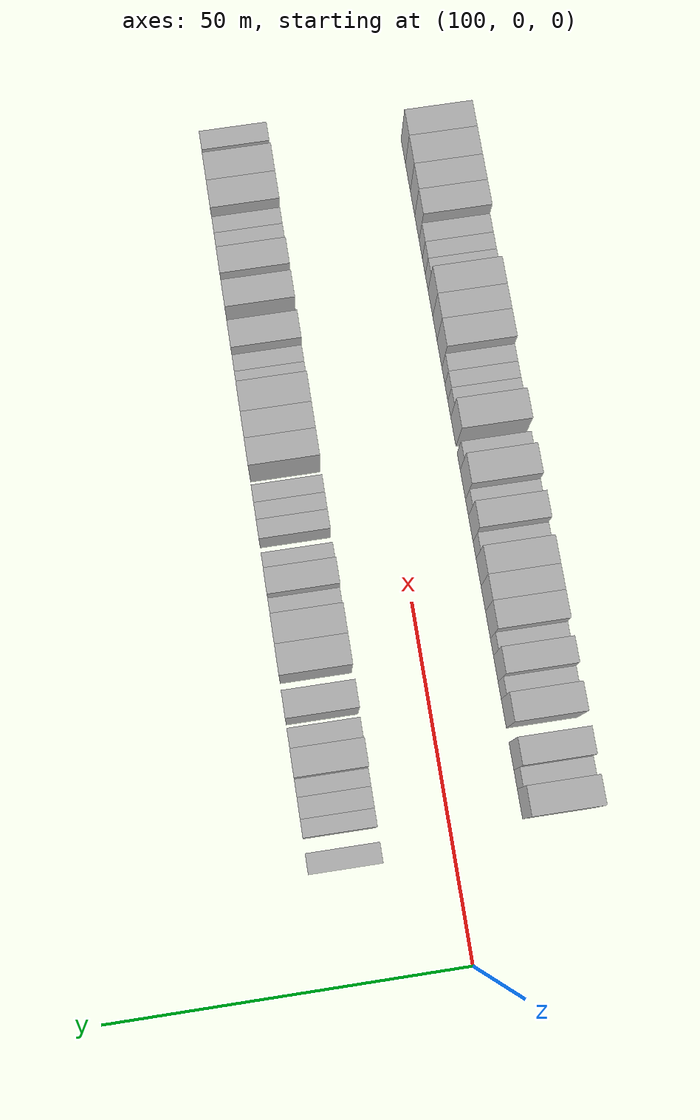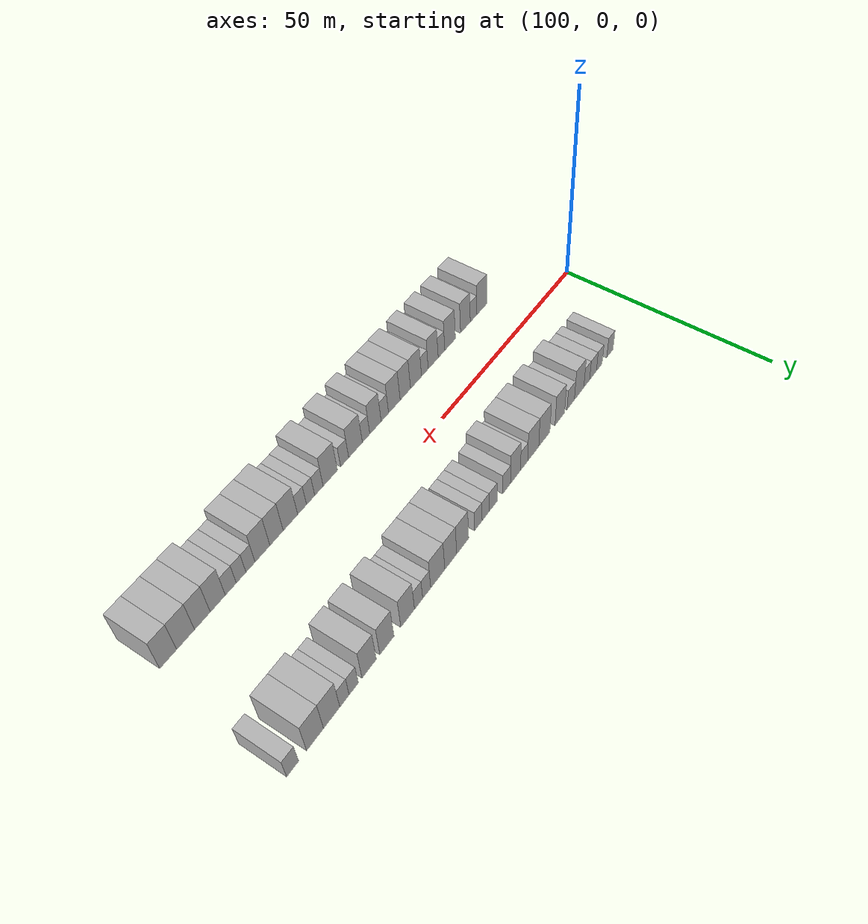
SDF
<sdf version="1.6">
 <world name="default">
  <model name="building_29">
   <static>1</static>
   <pose>116.5172 15.0000 0 0.000000 0.000000 1.570796</pose>
   <link name="link">
    <pose>0 0 3.00 0 0 0</pose>
    <collision name="collision"><geometry><box><size>10.0000 2.7716 6.0000</size></box></geometry></collision>
    <visual name="visual">
     <cast_shadows>0</cast_shadows>
     <geometry><box><size>10.0000 2.7716 6.0000</size></box></geometry>
     <material>
      <script>
       <uri>model://HANNAS_wall/materials/scripts</uri>
       <uri>model://HANNAS_wall/materials/textures</uri>
       <name>vrc/HANNAS_wall</name>
      </script>
     </material>
    </visual>
   </link>
  </model>
  <model name="building_30">
   <static>1</static>
   <pose>121.1402 15.0000 0 0.000000 0.000000 1.570796</pose>
   <link name="link">
    <pose>0 0 3.00 0 0 0</pose>
    <collision name="collision"><geometry><box><size>10.0000 2.4743 6.0000</size></box></geometry></collision>
    <visual name="visual">
     <cast_shadows>0</cast_shadows>
     <geometry><box><size>10.0000 2.4743 6.0000</size></box></geometry>
     <material>
      <script>
       <uri>model://HANNAS_wall/materials/scripts</uri>
       <uri>model://HANNAS_wall/materials/textures</uri>
       <name>vrc/HANNAS_wall</name>
      </script>
     </material>
    </visual>
   </link>
  </model>
  <model name="building_31">
   <static>1</static>
   <pose>123.8260 15.0000 0 0.000000 0.000000 1.570796</pose>
   <link name="link">
    <pose>0 0 3.00 0 0 0</pose>
    <collision name="collision"><geometry><box><size>10.0000 2.8974 6.0000</size></box></geometry></collision>
    <visual name="visual">
     <cast_shadows>0</cast_shadows>
     <geometry><box><size>10.0000 2.8974 6.0000</size></box></geometry>
     <material>
      <script>
       <uri>model://HANNAS_wall/materials/scripts</uri>
       <uri>model://HANNAS_wall/materials/textures</uri>
       <name>vrc/HANNAS_wall</name>
      </script>
     </material>
    </visual>
   </link>
  </model>
  <model name="building_32">
   <static>1</static>
   <pose>126.4903 15.0000 0 0.000000 0.000000 1.570796</pose>
   <link name="link">
    <pose>0 0 3.00 0 0 0</pose>
    <collision name="collision"><geometry><box><size>10.0000 2.4313 6.0000</size></box></geometry></collision>
    <visual name="visual">
     <cast_shadows>0</cast_shadows>
     <geometry><box><size>10.0000 2.4313 6.0000</size></box></geometry>
     <material>
      <script>
       <uri>model://HANNAS_wall/materials/scripts</uri>
       <uri>model://HANNAS_wall/materials/textures</uri>
       <name>vrc/HANNAS_wall</name>
      </script>
     </material>
    </visual>
   </link>
  </model>
  <model name="building_33">
   <static>1</static>
   <pose>129.6501 15.0000 0 0.000000 0.000000 1.570796</pose>
   <link name="link">
    <pose>0 0 4.50 0 0 0</pose>
    <collision name="collision"><geometry><box><size>10.0000 3.8882 9.0000</size></box></geometry></collision>
    <visual name="visual">
     <cast_shadows>0</cast_shadows>
     <geometry><box><size>10.0000 3.8882 9.0000</size></box></geometry>
     <material>
      <script>
       <uri>model://HANNAS_wall/materials/scripts</uri>
       <uri>model://HANNAS_wall/materials/textures</uri>
       <name>vrc/HANNAS_wall</name>
      </script>
     </material>
    </visual>
   </link>
  </model>
  <model name="building_34">
   <static>1</static>
   <pose>133.0760 15.0000 0 0.000000 0.000000 1.570796</pose>
   <link name="link">
    <pose>0 0 3.00 0 0 0</pose>
    <collision name="collision"><geometry><box><size>10.0000 2.9636 6.0000</size></box></geometry></collision>
    <visual name="visual">
     <cast_shadows>0</cast_shadows>
     <geometry><box><size>10.0000 2.9636 6.0000</size></box></geometry>
     <material>
      <script>
       <uri>model://HANNAS_wall/materials/scripts</uri>
       <uri>model://HANNAS_wall/materials/textures</uri>
       <name>vrc/HANNAS_wall</name>
      </script>
     </material>
    </visual>
   </link>
  </model>
  <model name="building_35">
   <static>1</static>
   <pose>137.4573 15.0000 0 0.000000 0.000000 1.570796</pose>
   <link name="link">
    <pose>0 0 4.50 0 0 0</pose>
    <collision name="collision"><geometry><box><size>10.0000 3.7990 9.0000</size></box></geometry></collision>
    <visual name="visual">
     <cast_shadows>0</cast_shadows>
     <geometry><box><size>10.0000 3.7990 9.0000</size></box></geometry>
     <material>
      <script>
       <uri>model://HANNAS_wall/materials/scripts</uri>
       <uri>model://HANNAS_wall/materials/textures</uri>
       <name>vrc/HANNAS_wall</name>
      </script>
     </material>
    </visual>
   </link>
  </model>
  <model name="building_36">
   <static>1</static>
   <pose>143.5039 15.0000 0 0.000000 0.000000 1.570796</pose>
   <link name="link">
    <pose>0 0 4.50 0 0 0</pose>
    <collision name="collision"><geometry><box><size>10.0000 4.2943 9.0000</size></box></geometry></collision>
    <visual name="visual">
     <cast_shadows>0</cast_shadows>
     <geometry><box><size>10.0000 4.2943 9.0000</size></box></geometry>
     <material>
      <script>
       <uri>model://HANNAS_wall/materials/scripts</uri>
       <uri>model://HANNAS_wall/materials/textures</uri>
       <name>vrc/HANNAS_wall</name>
      </script>
     </material>
    </visual>
   </link>
  </model>
  <model name="building_37">
   <static>1</static>
   <pose>147.7467 15.0000 0 0.000000 0.000000 1.570796</pose>
   <link name="link">
    <pose>0 0 4.50 0 0 0</pose>
    <collision name="collision"><geometry><box><size>10.0000 4.1912 9.0000</size></box></geometry></collision>
    <visual name="visual">
     <cast_shadows>0</cast_shadows>
     <geometry><box><size>10.0000 4.1912 9.0000</size></box></geometry>
     <material>
      <script>
       <uri>model://HANNAS_wall/materials/scripts</uri>
       <uri>model://HANNAS_wall/materials/textures</uri>
       <name>vrc/HANNAS_wall</name>
      </script>
     </material>
    </visual>
   </link>
  </model>
  <model name="building_38">
   <static>1</static>
   <pose>151.1695 15.0000 0 0.000000 0.000000 1.570796</pose>
   <link name="link">
    <pose>0 0 3.00 0 0 0</pose>
    <collision name="collision"><geometry><box><size>10.0000 2.6546 6.0000</size></box></geometry></collision>
    <visual name="visual">
     <cast_shadows>0</cast_shadows>
     <geometry><box><size>10.0000 2.6546 6.0000</size></box></geometry>
     <material>
      <script>
       <uri>model://HANNAS_wall/materials/scripts</uri>
       <uri>model://HANNAS_wall/materials/textures</uri>
       <name>vrc/HANNAS_wall</name>
      </script>
     </material>
    </visual>
   </link>
  </model>
  <model name="building_39">
   <static>1</static>
   <pose>154.3343 15.0000 0 0.000000 0.000000 1.570796</pose>
   <link name="link">
    <pose>0 0 4.50 0 0 0</pose>
    <collision name="collision"><geometry><box><size>10.0000 3.6749 9.0000</size></box></geometry></collision>
    <visual name="visual">
     <cast_shadows>0</cast_shadows>
     <geometry><box><size>10.0000 3.6749 9.0000</size></box></geometry>
     <material>
      <script>
       <uri>model://HANNAS_wall/materials/scripts</uri>
       <uri>model://HANNAS_wall/materials/textures</uri>
       <name>vrc/HANNAS_wall</name>
      </script>
     </material>
    </visual>
   </link>
  </model>
  <model name="building_40">
   <static>1</static>
   <pose>157.5388 15.0000 0 0.000000 0.000000 1.570796</pose>
   <link name="link">
    <pose>0 0 3.00 0 0 0</pose>
    <collision name="collision"><geometry><box><size>10.0000 2.7341 6.0000</size></box></geometry></collision>
    <visual name="visual">
     <cast_shadows>0</cast_shadows>
     <geometry><box><size>10.0000 2.7341 6.0000</size></box></geometry>
     <material>
      <script>
       <uri>model://HANNAS_wall/materials/scripts</uri>
       <uri>model://HANNAS_wall/materials/textures</uri>
       <name>vrc/HANNAS_wall</name>
      </script>
     </material>
    </visual>
   </link>
  </model>
  <model name="building_41">
   <static>1</static>
   <pose>162.2911 15.0000 0 0.000000 0.000000 1.570796</pose>
   <link name="link">
    <pose>0 0 3.00 0 0 0</pose>
    <collision name="collision"><geometry><box><size>10.0000 2.7706 6.0000</size></box></geometry></collision>
    <visual name="visual">
     <cast_shadows>0</cast_shadows>
     <geometry><box><size>10.0000 2.7706 6.0000</size></box></geometry>
     <material>
      <script>
       <uri>model://HANNAS_wall/materials/scripts</uri>
       <uri>model://HANNAS_wall/materials/textures</uri>
       <name>vrc/HANNAS_wall</name>
      </script>
     </material>
    </visual>
   </link>
  </model>
  <model name="building_42">
   <static>1</static>
   <pose>164.9075 15.0000 0 0.000000 0.000000 1.570796</pose>
   <link name="link">
    <pose>0 0 3.00 0 0 0</pose>
    <collision name="collision"><geometry><box><size>10.0000 2.4622 6.0000</size></box></geometry></collision>
    <visual name="visual">
     <cast_shadows>0</cast_shadows>
     <geometry><box><size>10.0000 2.4622 6.0000</size></box></geometry>
     <material>
      <script>
       <uri>model://HANNAS_wall/materials/scripts</uri>
       <uri>model://HANNAS_wall/materials/textures</uri>
       <name>vrc/HANNAS_wall</name>
      </script>
     </material>
    </visual>
   </link>
  </model>
  <model name="building_43">
   <static>1</static>
   <pose>167.4110 15.0000 0 0.000000 0.000000 1.570796</pose>
   <link name="link">
    <pose>0 0 3.00 0 0 0</pose>
    <collision name="collision"><geometry><box><size>10.0000 2.5448 6.0000</size></box></geometry></collision>
    <visual name="visual">
     <cast_shadows>0</cast_shadows>
     <geometry><box><size>10.0000 2.5448 6.0000</size></box></geometry>
     <material>
      <script>
       <uri>model://HANNAS_wall/materials/scripts</uri>
       <uri>model://HANNAS_wall/materials/textures</uri>
       <name>vrc/HANNAS_wall</name>
      </script>
     </material>
    </visual>
   </link>
  </model>
  <model name="building_44">
   <static>1</static>
   <pose>172.6693 15.0000 0 0.000000 0.000000 1.570796</pose>
   <link name="link">
    <pose>0 0 4.50 0 0 0</pose>
    <collision name="collision"><geometry><box><size>10.0000 3.9719 9.0000</size></box></geometry></collision>
    <visual name="visual">
     <cast_shadows>0</cast_shadows>
     <geometry><box><size>10.0000 3.9719 9.0000</size></box></geometry>
     <material>
      <script>
       <uri>model://HANNAS_wall/materials/scripts</uri>
       <uri>model://HANNAS_wall/materials/textures</uri>
       <name>vrc/HANNAS_wall</name>
      </script>
     </material>
    </visual>
   </link>
  </model>
  <model name="building_45">
   <static>1</static>
   <pose>176.5831 15.0000 0 0.000000 0.000000 1.570796</pose>
   <link name="link">
    <pose>0 0 4.50 0 0 0</pose>
    <collision name="collision"><geometry><box><size>10.0000 3.8555 9.0000</size></box></geometry></collision>
    <visual name="visual">
     <cast_shadows>0</cast_shadows>
     <geometry><box><size>10.0000 3.8555 9.0000</size></box></geometry>
     <material>
      <script>
       <uri>model://HANNAS_wall/materials/scripts</uri>
       <uri>model://HANNAS_wall/materials/textures</uri>
       <name>vrc/HANNAS_wall</name>
      </script>
     </material>
    </visual>
   </link>
  </model>
  <model name="building_46">
   <static>1</static>
   <pose>180.7405 15.0000 0 0.000000 0.000000 1.570796</pose>
   <link name="link">
    <pose>0 0 4.50 0 0 0</pose>
    <collision name="collision"><geometry><box><size>10.0000 4.4594 9.0000</size></box></geometry></collision>
    <visual name="visual">
     <cast_shadows>0</cast_shadows>
     <geometry><box><size>10.0000 4.4594 9.0000</size></box></geometry>
     <material>
      <script>
       <uri>model://HANNAS_wall/materials/scripts</uri>
       <uri>model://HANNAS_wall/materials/textures</uri>
       <name>vrc/HANNAS_wall</name>
      </script>
     </material>
    </visual>
   </link>
  </model>
  <model name="building_47">
   <static>1</static>
   <pose>184.2190 15.0000 0 0.000000 0.000000 1.570796</pose>
   <link name="link">
    <pose>0 0 3.00 0 0 0</pose>
    <collision name="collision"><geometry><box><size>10.0000 2.4976 6.0000</size></box></geometry></collision>
    <visual name="visual">
     <cast_shadows>0</cast_shadows>
     <geometry><box><size>10.0000 2.4976 6.0000</size></box></geometry>
     <material>
      <script>
       <uri>model://HANNAS_wall/materials/scripts</uri>
       <uri>model://HANNAS_wall/materials/textures</uri>
       <name>vrc/HANNAS_wall</name>
      </script>
     </material>
    </visual>
   </link>
  </model>
  <model name="building_48">
   <static>1</static>
   <pose>186.7154 15.0000 0 0.000000 0.000000 1.570796</pose>
   <link name="link">
    <pose>0 0 3.00 0 0 0</pose>
    <collision name="collision"><geometry><box><size>10.0000 2.4953 6.0000</size></box></geometry></collision>
    <visual name="visual">
     <cast_shadows>0</cast_shadows>
     <geometry><box><size>10.0000 2.4953 6.0000</size></box></geometry>
     <material>
      <script>
       <uri>model://HANNAS_wall/materials/scripts</uri>
       <uri>model://HANNAS_wall/materials/textures</uri>
       <name>vrc/HANNAS_wall</name>
      </script>
     </material>
    </visual>
   </link>
  </model>
  <model name="building_49">
   <static>1</static>
   <pose>190.0253 15.0000 0 0.000000 0.000000 1.570796</pose>
   <link name="link">
    <pose>0 0 4.50 0 0 0</pose>
    <collision name="collision"><geometry><box><size>10.0000 4.1245 9.0000</size></box></geometry></collision>
    <visual name="visual">
     <cast_shadows>0</cast_shadows>
     <geometry><box><size>10.0000 4.1245 9.0000</size></box></geometry>
     <material>
      <script>
       <uri>model://HANNAS_wall/materials/scripts</uri>
       <uri>model://HANNAS_wall/materials/textures</uri>
       <name>vrc/HANNAS_wall</name>
      </script>
     </material>
    </visual>
   </link>
  </model>
  <model name="building_50">
   <static>1</static>
   <pose>196.1464 15.0000 0 0.000000 0.000000 1.570796</pose>
   <link name="link">
    <pose>0 0 4.50 0 0 0</pose>
    <collision name="collision"><geometry><box><size>10.0000 4.1176 9.0000</size></box></geometry></collision>
    <visual name="visual">
     <cast_shadows>0</cast_shadows>
     <geometry><box><size>10.0000 4.1176 9.0000</size></box></geometry>
     <material>
      <script>
       <uri>model://HANNAS_wall/materials/scripts</uri>
       <uri>model://HANNAS_wall/materials/textures</uri>
       <name>vrc/HANNAS_wall</name>
      </script>
     </material>
    </visual>
   </link>
  </model>
  <model name="building_51">
   <static>1</static>
   <pose>201.2211 15.0000 0 0.000000 0.000000 1.570796</pose>
   <link name="link">
    <pose>0 0 4.50 0 0 0</pose>
    <collision name="collision"><geometry><box><size>10.0000 4.0319 9.0000</size></box></geometry></collision>
    <visual name="visual">
     <cast_shadows>0</cast_shadows>
     <geometry><box><size>10.0000 4.0319 9.0000</size></box></geometry>
     <material>
      <script>
       <uri>model://HANNAS_wall/materials/scripts</uri>
       <uri>model://HANNAS_wall/materials/textures</uri>
       <name>vrc/HANNAS_wall</name>
      </script>
     </material>
    </visual>
   </link>
  </model>
  <model name="building_52">
   <static>1</static>
   <pose>205.5053 15.0000 0 0.000000 0.000000 1.570796</pose>
   <link name="link">
    <pose>0 0 3.00 0 0 0</pose>
    <collision name="collision"><geometry><box><size>10.0000 2.5364 6.0000</size></box></geometry></collision>
    <visual name="visual">
     <cast_shadows>0</cast_shadows>
     <geometry><box><size>10.0000 2.5364 6.0000</size></box></geometry>
     <material>
      <script>
       <uri>model://HANNAS_wall/materials/scripts</uri>
       <uri>model://HANNAS_wall/materials/textures</uri>
       <name>vrc/HANNAS_wall</name>
      </script>
     </material>
    </visual>
   </link>
  </model>
  <model name="building_53">
   <static>1</static>
   <pose>208.0329 15.0000 0 0.000000 0.000000 1.570796</pose>
   <link name="link">
    <pose>0 0 3.00 0 0 0</pose>
    <collision name="collision"><geometry><box><size>10.0000 2.5187 6.0000</size></box></geometry></collision>
    <visual name="visual">
     <cast_shadows>0</cast_shadows>
     <geometry><box><size>10.0000 2.5187 6.0000</size></box></geometry>
     <material>
      <script>
       <uri>model://HANNAS_wall/materials/scripts</uri>
       <uri>model://HANNAS_wall/materials/textures</uri>
       <name>vrc/HANNAS_wall</name>
      </script>
     </material>
    </visual>
   </link>
  </model>
  <model name="building_54">
   <static>1</static>
   <pose>211.4570 15.0000 0 0.000000 0.000000 1.570796</pose>
   <link name="link">
    <pose>0 0 4.50 0 0 0</pose>
    <collision name="collision"><geometry><box><size>10.0000 4.3296 9.0000</size></box></geometry></collision>
    <visual name="visual">
     <cast_shadows>0</cast_shadows>
     <geometry><box><size>10.0000 4.3296 9.0000</size></box></geometry>
     <material>
      <script>
       <uri>model://HANNAS_wall/materials/scripts</uri>
       <uri>model://HANNAS_wall/materials/textures</uri>
       <name>vrc/HANNAS_wall</name>
      </script>
     </material>
    </visual>
   </link>
  </model>
  <model name="building_55">
   <static>1</static>
   <pose>215.8085 15.0000 0 0.000000 0.000000 1.570796</pose>
   <link name="link">
    <pose>0 0 4.50 0 0 0</pose>
    <collision name="collision"><geometry><box><size>10.0000 4.3734 9.0000</size></box></geometry></collision>
    <visual name="visual">
     <cast_shadows>0</cast_shadows>
     <geometry><box><size>10.0000 4.3734 9.0000</size></box></geometry>
     <material>
      <script>
       <uri>model://HANNAS_wall/materials/scripts</uri>
       <uri>model://HANNAS_wall/materials/textures</uri>
       <name>vrc/HANNAS_wall</name>
      </script>
     </material>
    </visual>
   </link>
  </model>
  <model name="building_56">
   <static>1</static>
   <pose>221.4932 15.0000 0 0.000000 0.000000 1.570796</pose>
   <link name="link">
    <pose>0 0 3.00 0 0 0</pose>
    <collision name="collision"><geometry><box><size>10.0000 2.9960 6.0000</size></box></geometry></collision>
    <visual name="visual">
     <cast_shadows>0</cast_shadows>
     <geometry><box><size>10.0000 2.9960 6.0000</size></box></geometry>
     <material>
      <script>
       <uri>model://HANNAS_wall/materials/scripts</uri>
       <uri>model://HANNAS_wall/materials/textures</uri>
       <name>vrc/HANNAS_wall</name>
      </script>
     </material>
    </visual>
   </link>
  </model>
  <model name="building_86">
   <static>1</static>
   <pose>120.1081 -15.0000 0 0.000000 0.000000 1.570796</pose>
   <link name="link">
    <pose>0 0 4.50 0 0 0</pose>
    <collision name="collision"><geometry><box><size>10.0000 4.0918 9.0000</size></box></geometry></collision>
    <visual name="visual">
     <cast_shadows>0</cast_shadows>
     <geometry><box><size>10.0000 4.0918 9.0000</size></box></geometry>
     <material>
      <script>
       <uri>model://HANNAS_wall/materials/scripts</uri>
       <uri>model://HANNAS_wall/materials/textures</uri>
       <name>vrc/HANNAS_wall</name>
      </script>
     </material>
    </visual>
   </link>
  </model>
  <model name="building_87">
   <static>1</static>
   <pose>123.4624 -15.0000 0 0.000000 0.000000 1.570796</pose>
   <link name="link">
    <pose>0 0 3.00 0 0 0</pose>
    <collision name="collision"><geometry><box><size>10.0000 2.6167 6.0000</size></box></geometry></collision>
    <visual name="visual">
     <cast_shadows>0</cast_shadows>
     <geometry><box><size>10.0000 2.6167 6.0000</size></box></geometry>
     <material>
      <script>
       <uri>model://HANNAS_wall/materials/scripts</uri>
       <uri>model://HANNAS_wall/materials/textures</uri>
       <name>vrc/HANNAS_wall</name>
      </script>
     </material>
    </visual>
   </link>
  </model>
  <model name="building_88">
   <static>1</static>
   <pose>126.6639 -15.0000 0 0.000000 0.000000 1.570796</pose>
   <link name="link">
    <pose>0 0 4.50 0 0 0</pose>
    <collision name="collision"><geometry><box><size>10.0000 3.7864 9.0000</size></box></geometry></collision>
    <visual name="visual">
     <cast_shadows>0</cast_shadows>
     <geometry><box><size>10.0000 3.7864 9.0000</size></box></geometry>
     <material>
      <script>
       <uri>model://HANNAS_wall/materials/scripts</uri>
       <uri>model://HANNAS_wall/materials/textures</uri>
       <name>vrc/HANNAS_wall</name>
      </script>
     </material>
    </visual>
   </link>
  </model>
  <model name="building_89">
   <static>1</static>
   <pose>132.5696 -15.0000 0 0.000000 0.000000 1.570796</pose>
   <link name="link">
    <pose>0 0 4.50 0 0 0</pose>
    <collision name="collision"><geometry><box><size>10.0000 4.0250 9.0000</size></box></geometry></collision>
    <visual name="visual">
     <cast_shadows>0</cast_shadows>
     <geometry><box><size>10.0000 4.0250 9.0000</size></box></geometry>
     <material>
      <script>
       <uri>model://HANNAS_wall/materials/scripts</uri>
       <uri>model://HANNAS_wall/materials/textures</uri>
       <name>vrc/HANNAS_wall</name>
      </script>
     </material>
    </visual>
   </link>
  </model>
  <model name="building_90">
   <static>1</static>
   <pose>135.8170 -15.0000 0 0.000000 0.000000 1.570796</pose>
   <link name="link">
    <pose>0 0 3.00 0 0 0</pose>
    <collision name="collision"><geometry><box><size>10.0000 2.4698 6.0000</size></box></geometry></collision>
    <visual name="visual">
     <cast_shadows>0</cast_shadows>
     <geometry><box><size>10.0000 2.4698 6.0000</size></box></geometry>
     <material>
      <script>
       <uri>model://HANNAS_wall/materials/scripts</uri>
       <uri>model://HANNAS_wall/materials/textures</uri>
       <name>vrc/HANNAS_wall</name>
      </script>
     </material>
    </visual>
   </link>
  </model>
  <model name="building_91">
   <static>1</static>
   <pose>138.8957 -15.0000 0 0.000000 0.000000 1.570796</pose>
   <link name="link">
    <pose>0 0 4.50 0 0 0</pose>
    <collision name="collision"><geometry><box><size>10.0000 3.6876 9.0000</size></box></geometry></collision>
    <visual name="visual">
     <cast_shadows>0</cast_shadows>
     <geometry><box><size>10.0000 3.6876 9.0000</size></box></geometry>
     <material>
      <script>
       <uri>model://HANNAS_wall/materials/scripts</uri>
       <uri>model://HANNAS_wall/materials/textures</uri>
       <name>vrc/HANNAS_wall</name>
      </script>
     </material>
    </visual>
   </link>
  </model>
  <model name="building_92">
   <static>1</static>
   <pose>141.9514 -15.0000 0 0.000000 0.000000 1.570796</pose>
   <link name="link">
    <pose>0 0 3.00 0 0 0</pose>
    <collision name="collision"><geometry><box><size>10.0000 2.4238 6.0000</size></box></geometry></collision>
    <visual name="visual">
     <cast_shadows>0</cast_shadows>
     <geometry><box><size>10.0000 2.4238 6.0000</size></box></geometry>
     <material>
      <script>
       <uri>model://HANNAS_wall/materials/scripts</uri>
       <uri>model://HANNAS_wall/materials/textures</uri>
       <name>vrc/HANNAS_wall</name>
      </script>
     </material>
    </visual>
   </link>
  </model>
  <model name="building_93">
   <static>1</static>
   <pose>145.1328 -15.0000 0 0.000000 0.000000 1.570796</pose>
   <link name="link">
    <pose>0 0 4.50 0 0 0</pose>
    <collision name="collision"><geometry><box><size>10.0000 3.9390 9.0000</size></box></geometry></collision>
    <visual name="visual">
     <cast_shadows>0</cast_shadows>
     <geometry><box><size>10.0000 3.9390 9.0000</size></box></geometry>
     <material>
      <script>
       <uri>model://HANNAS_wall/materials/scripts</uri>
       <uri>model://HANNAS_wall/materials/textures</uri>
       <name>vrc/HANNAS_wall</name>
      </script>
     </material>
    </visual>
   </link>
  </model>
  <model name="building_94">
   <static>1</static>
   <pose>148.9243 -15.0000 0 0.000000 0.000000 1.570796</pose>
   <link name="link">
    <pose>0 0 4.50 0 0 0</pose>
    <collision name="collision"><geometry><box><size>10.0000 3.6440 9.0000</size></box></geometry></collision>
    <visual name="visual">
     <cast_shadows>0</cast_shadows>
     <geometry><box><size>10.0000 3.6440 9.0000</size></box></geometry>
     <material>
      <script>
       <uri>model://HANNAS_wall/materials/scripts</uri>
       <uri>model://HANNAS_wall/materials/textures</uri>
       <name>vrc/HANNAS_wall</name>
      </script>
     </material>
    </visual>
   </link>
  </model>
  <model name="building_95">
   <static>1</static>
   <pose>152.7528 -15.0000 0 0.000000 0.000000 1.570796</pose>
   <link name="link">
    <pose>0 0 4.50 0 0 0</pose>
    <collision name="collision"><geometry><box><size>10.0000 4.0130 9.0000</size></box></geometry></collision>
    <visual name="visual">
     <cast_shadows>0</cast_shadows>
     <geometry><box><size>10.0000 4.0130 9.0000</size></box></geometry>
     <material>
      <script>
       <uri>model://HANNAS_wall/materials/scripts</uri>
       <uri>model://HANNAS_wall/materials/textures</uri>
       <name>vrc/HANNAS_wall</name>
      </script>
     </material>
    </visual>
   </link>
  </model>
  <model name="building_96">
   <static>1</static>
   <pose>156.0105 -15.0000 0 0.000000 0.000000 1.570796</pose>
   <link name="link">
    <pose>0 0 3.00 0 0 0</pose>
    <collision name="collision"><geometry><box><size>10.0000 2.5024 6.0000</size></box></geometry></collision>
    <visual name="visual">
     <cast_shadows>0</cast_shadows>
     <geometry><box><size>10.0000 2.5024 6.0000</size></box></geometry>
     <material>
      <script>
       <uri>model://HANNAS_wall/materials/scripts</uri>
       <uri>model://HANNAS_wall/materials/textures</uri>
       <name>vrc/HANNAS_wall</name>
      </script>
     </material>
    </visual>
   </link>
  </model>
  <model name="building_97">
   <static>1</static>
   <pose>159.1634 -15.0000 0 0.000000 0.000000 1.570796</pose>
   <link name="link">
    <pose>0 0 4.50 0 0 0</pose>
    <collision name="collision"><geometry><box><size>10.0000 3.8034 9.0000</size></box></geometry></collision>
    <visual name="visual">
     <cast_shadows>0</cast_shadows>
     <geometry><box><size>10.0000 3.8034 9.0000</size></box></geometry>
     <material>
      <script>
       <uri>model://HANNAS_wall/materials/scripts</uri>
       <uri>model://HANNAS_wall/materials/textures</uri>
       <name>vrc/HANNAS_wall</name>
      </script>
     </material>
    </visual>
   </link>
  </model>
  <model name="building_98">
   <static>1</static>
   <pose>162.2902 -15.0000 0 0.000000 0.000000 1.570796</pose>
   <link name="link">
    <pose>0 0 3.00 0 0 0</pose>
    <collision name="collision"><geometry><box><size>10.0000 2.4501 6.0000</size></box></geometry></collision>
    <visual name="visual">
     <cast_shadows>0</cast_shadows>
     <geometry><box><size>10.0000 2.4501 6.0000</size></box></geometry>
     <material>
      <script>
       <uri>model://HANNAS_wall/materials/scripts</uri>
       <uri>model://HANNAS_wall/materials/textures</uri>
       <name>vrc/HANNAS_wall</name>
      </script>
     </material>
    </visual>
   </link>
  </model>
  <model name="building_99">
   <static>1</static>
   <pose>165.7224 -15.0000 0 0.000000 0.000000 1.570796</pose>
   <link name="link">
    <pose>0 0 4.50 0 0 0</pose>
    <collision name="collision"><geometry><box><size>10.0000 4.4142 9.0000</size></box></geometry></collision>
    <visual name="visual">
     <cast_shadows>0</cast_shadows>
     <geometry><box><size>10.0000 4.4142 9.0000</size></box></geometry>
     <material>
      <script>
       <uri>model://HANNAS_wall/materials/scripts</uri>
       <uri>model://HANNAS_wall/materials/textures</uri>
       <name>vrc/HANNAS_wall</name>
      </script>
     </material>
    </visual>
   </link>
  </model>
  <model name="building_100">
   <static>1</static>
   <pose>169.2188 -15.0000 0 0.000000 0.000000 1.570796</pose>
   <link name="link">
    <pose>0 0 3.00 0 0 0</pose>
    <collision name="collision"><geometry><box><size>10.0000 2.5788 6.0000</size></box></geometry></collision>
    <visual name="visual">
     <cast_shadows>0</cast_shadows>
     <geometry><box><size>10.0000 2.5788 6.0000</size></box></geometry>
     <material>
      <script>
       <uri>model://HANNAS_wall/materials/scripts</uri>
       <uri>model://HANNAS_wall/materials/textures</uri>
       <name>vrc/HANNAS_wall</name>
      </script>
     </material>
    </visual>
   </link>
  </model>
  <model name="building_101">
   <static>1</static>
   <pose>173.7243 -15.0000 0 0.000000 0.000000 1.570796</pose>
   <link name="link">
    <pose>0 0 4.50 0 0 0</pose>
    <collision name="collision"><geometry><box><size>10.0000 4.4321 9.0000</size></box></geometry></collision>
    <visual name="visual">
     <cast_shadows>0</cast_shadows>
     <geometry><box><size>10.0000 4.4321 9.0000</size></box></geometry>
     <material>
      <script>
       <uri>model://HANNAS_wall/materials/scripts</uri>
       <uri>model://HANNAS_wall/materials/textures</uri>
       <name>vrc/HANNAS_wall</name>
      </script>
     </material>
    </visual>
   </link>
  </model>
  <model name="building_102">
   <static>1</static>
   <pose>177.2162 -15.0000 0 0.000000 0.000000 1.570796</pose>
   <link name="link">
    <pose>0 0 3.00 0 0 0</pose>
    <collision name="collision"><geometry><box><size>10.0000 2.5517 6.0000</size></box></geometry></collision>
    <visual name="visual">
     <cast_shadows>0</cast_shadows>
     <geometry><box><size>10.0000 2.5517 6.0000</size></box></geometry>
     <material>
      <script>
       <uri>model://HANNAS_wall/materials/scripts</uri>
       <uri>model://HANNAS_wall/materials/textures</uri>
       <name>vrc/HANNAS_wall</name>
      </script>
     </material>
    </visual>
   </link>
  </model>
  <model name="building_103">
   <static>1</static>
   <pose>179.7285 -15.0000 0 0.000000 0.000000 1.570796</pose>
   <link name="link">
    <pose>0 0 3.00 0 0 0</pose>
    <collision name="collision"><geometry><box><size>10.0000 2.4728 6.0000</size></box></geometry></collision>
    <visual name="visual">
     <cast_shadows>0</cast_shadows>
     <geometry><box><size>10.0000 2.4728 6.0000</size></box></geometry>
     <material>
      <script>
       <uri>model://HANNAS_wall/materials/scripts</uri>
       <uri>model://HANNAS_wall/materials/textures</uri>
       <name>vrc/HANNAS_wall</name>
      </script>
     </material>
    </visual>
   </link>
  </model>
  <model name="building_104">
   <static>1</static>
   <pose>182.2795 -15.0000 0 0.000000 0.000000 1.570796</pose>
   <link name="link">
    <pose>0 0 3.00 0 0 0</pose>
    <collision name="collision"><geometry><box><size>10.0000 2.6292 6.0000</size></box></geometry></collision>
    <visual name="visual">
     <cast_shadows>0</cast_shadows>
     <geometry><box><size>10.0000 2.6292 6.0000</size></box></geometry>
     <material>
      <script>
       <uri>model://HANNAS_wall/materials/scripts</uri>
       <uri>model://HANNAS_wall/materials/textures</uri>
       <name>vrc/HANNAS_wall</name>
      </script>
     </material>
    </visual>
   </link>
  </model>
  <model name="building_105">
   <static>1</static>
   <pose>185.7002 -15.0000 0 0.000000 0.000000 1.570796</pose>
   <link name="link">
    <pose>0 0 4.50 0 0 0</pose>
    <collision name="collision"><geometry><box><size>10.0000 4.2122 9.0000</size></box></geometry></collision>
    <visual name="visual">
     <cast_shadows>0</cast_shadows>
     <geometry><box><size>10.0000 4.2122 9.0000</size></box></geometry>
     <material>
      <script>
       <uri>model://HANNAS_wall/materials/scripts</uri>
       <uri>model://HANNAS_wall/materials/textures</uri>
       <name>vrc/HANNAS_wall</name>
      </script>
     </material>
    </visual>
   </link>
  </model>
  <model name="building_106">
   <static>1</static>
   <pose>189.7027 -15.0000 0 0.000000 0.000000 1.570796</pose>
   <link name="link">
    <pose>0 0 4.50 0 0 0</pose>
    <collision name="collision"><geometry><box><size>10.0000 3.7927 9.0000</size></box></geometry></collision>
    <visual name="visual">
     <cast_shadows>0</cast_shadows>
     <geometry><box><size>10.0000 3.7927 9.0000</size></box></geometry>
     <material>
      <script>
       <uri>model://HANNAS_wall/materials/scripts</uri>
       <uri>model://HANNAS_wall/materials/textures</uri>
       <name>vrc/HANNAS_wall</name>
      </script>
     </material>
    </visual>
   </link>
  </model>
  <model name="building_107">
   <static>1</static>
   <pose>193.6695 -15.0000 0 0.000000 0.000000 1.570796</pose>
   <link name="link">
    <pose>0 0 4.50 0 0 0</pose>
    <collision name="collision"><geometry><box><size>10.0000 4.1409 9.0000</size></box></geometry></collision>
    <visual name="visual">
     <cast_shadows>0</cast_shadows>
     <geometry><box><size>10.0000 4.1409 9.0000</size></box></geometry>
     <material>
      <script>
       <uri>model://HANNAS_wall/materials/scripts</uri>
       <uri>model://HANNAS_wall/materials/textures</uri>
       <name>vrc/HANNAS_wall</name>
      </script>
     </material>
    </visual>
   </link>
  </model>
  <model name="building_108">
   <static>1</static>
   <pose>196.9914 -15.0000 0 0.000000 0.000000 1.570796</pose>
   <link name="link">
    <pose>0 0 3.00 0 0 0</pose>
    <collision name="collision"><geometry><box><size>10.0000 2.5029 6.0000</size></box></geometry></collision>
    <visual name="visual">
     <cast_shadows>0</cast_shadows>
     <geometry><box><size>10.0000 2.5029 6.0000</size></box></geometry>
     <material>
      <script>
       <uri>model://HANNAS_wall/materials/scripts</uri>
       <uri>model://HANNAS_wall/materials/textures</uri>
       <name>vrc/HANNAS_wall</name>
      </script>
     </material>
    </visual>
   </link>
  </model>
  <model name="building_109">
   <static>1</static>
   <pose>199.5492 -15.0000 0 0.000000 0.000000 1.570796</pose>
   <link name="link">
    <pose>0 0 3.00 0 0 0</pose>
    <collision name="collision"><geometry><box><size>10.0000 2.6128 6.0000</size></box></geometry></collision>
    <visual name="visual">
     <cast_shadows>0</cast_shadows>
     <geometry><box><size>10.0000 2.6128 6.0000</size></box></geometry>
     <material>
      <script>
       <uri>model://HANNAS_wall/materials/scripts</uri>
       <uri>model://HANNAS_wall/materials/textures</uri>
       <name>vrc/HANNAS_wall</name>
      </script>
     </material>
    </visual>
   </link>
  </model>
  <model name="building_110">
   <static>1</static>
   <pose>202.3090 -15.0000 0 0.000000 0.000000 1.570796</pose>
   <link name="link">
    <pose>0 0 3.00 0 0 0</pose>
    <collision name="collision"><geometry><box><size>10.0000 2.9069 6.0000</size></box></geometry></collision>
    <visual name="visual">
     <cast_shadows>0</cast_shadows>
     <geometry><box><size>10.0000 2.9069 6.0000</size></box></geometry>
     <material>
      <script>
       <uri>model://HANNAS_wall/materials/scripts</uri>
       <uri>model://HANNAS_wall/materials/textures</uri>
       <name>vrc/HANNAS_wall</name>
      </script>
     </material>
    </visual>
   </link>
  </model>
  <model name="building_111">
   <static>1</static>
   <pose>205.7291 -15.0000 0 0.000000 0.000000 1.570796</pose>
   <link name="link">
    <pose>0 0 4.50 0 0 0</pose>
    <collision name="collision"><geometry><box><size>10.0000 3.9332 9.0000</size></box></geometry></collision>
    <visual name="visual">
     <cast_shadows>0</cast_shadows>
     <geometry><box><size>10.0000 3.9332 9.0000</size></box></geometry>
     <material>
      <script>
       <uri>model://HANNAS_wall/materials/scripts</uri>
       <uri>model://HANNAS_wall/materials/textures</uri>
       <name>vrc/HANNAS_wall</name>
      </script>
     </material>
    </visual>
   </link>
  </model>
  <model name="building_112">
   <static>1</static>
   <pose>209.7044 -15.0000 0 0.000000 0.000000 1.570796</pose>
   <link name="link">
    <pose>0 0 4.50 0 0 0</pose>
    <collision name="collision"><geometry><box><size>10.0000 4.0175 9.0000</size></box></geometry></collision>
    <visual name="visual">
     <cast_shadows>0</cast_shadows>
     <geometry><box><size>10.0000 4.0175 9.0000</size></box></geometry>
     <material>
      <script>
       <uri>model://HANNAS_wall/materials/scripts</uri>
       <uri>model://HANNAS_wall/materials/textures</uri>
       <name>vrc/HANNAS_wall</name>
      </script>
     </material>
    </visual>
   </link>
  </model>
  <model name="building_113">
   <static>1</static>
   <pose>213.9456 -15.0000 0 0.000000 0.000000 1.570796</pose>
   <link name="link">
    <pose>0 0 4.50 0 0 0</pose>
    <collision name="collision"><geometry><box><size>10.0000 4.4648 9.0000</size></box></geometry></collision>
    <visual name="visual">
     <cast_shadows>0</cast_shadows>
     <geometry><box><size>10.0000 4.4648 9.0000</size></box></geometry>
     <material>
      <script>
       <uri>model://HANNAS_wall/materials/scripts</uri>
       <uri>model://HANNAS_wall/materials/textures</uri>
       <name>vrc/HANNAS_wall</name>
      </script>
     </material>
    </visual>
   </link>
  </model>
  <model name="building_114">
   <static>1</static>
   <pose>218.2349 -15.0000 0 0.000000 0.000000 1.570796</pose>
   <link name="link">
    <pose>0 0 4.50 0 0 0</pose>
    <collision name="collision"><geometry><box><size>10.0000 4.1138 9.0000</size></box></geometry></collision>
    <visual name="visual">
     <cast_shadows>0</cast_shadows>
     <geometry><box><size>10.0000 4.1138 9.0000</size></box></geometry>
     <material>
      <script>
       <uri>model://HANNAS_wall/materials/scripts</uri>
       <uri>model://HANNAS_wall/materials/textures</uri>
       <name>vrc/HANNAS_wall</name>
      </script>
     </material>
    </visual>
   </link>
  </model>
 </world>
</sdf>
